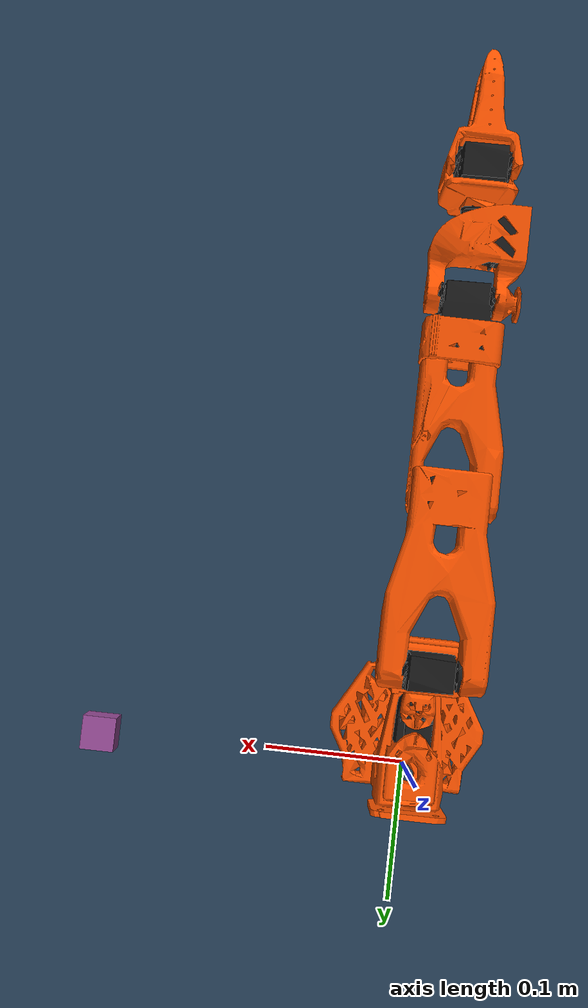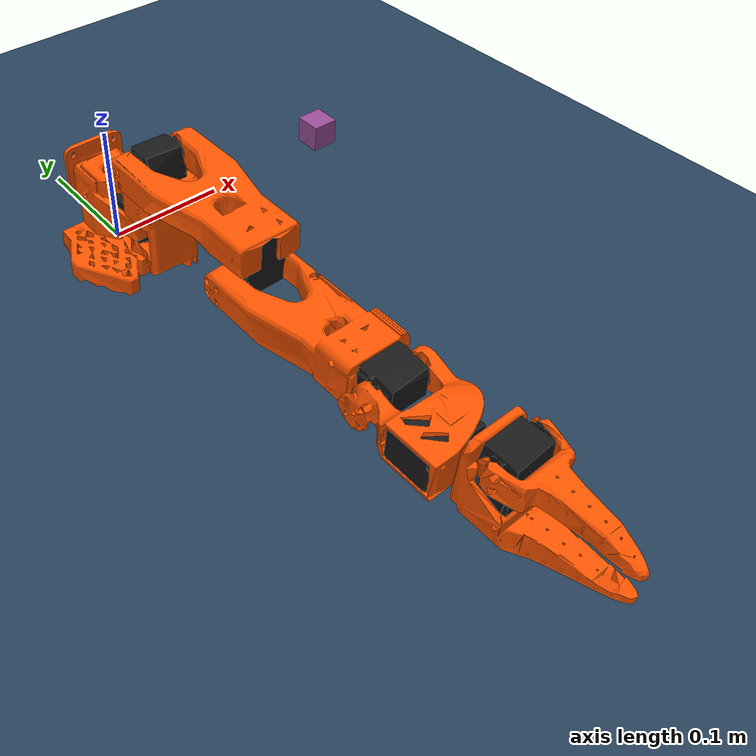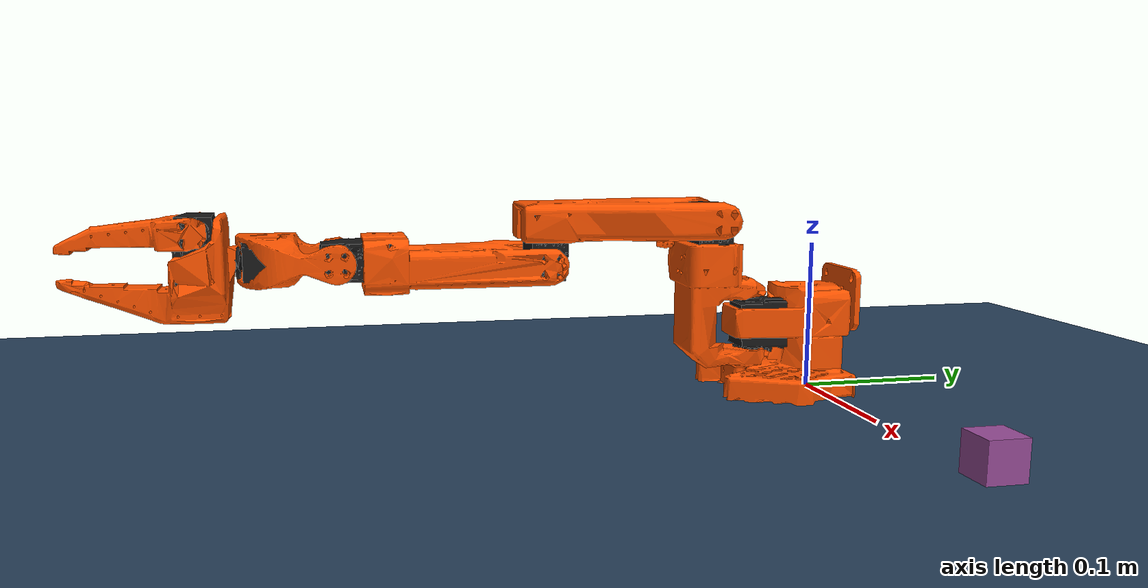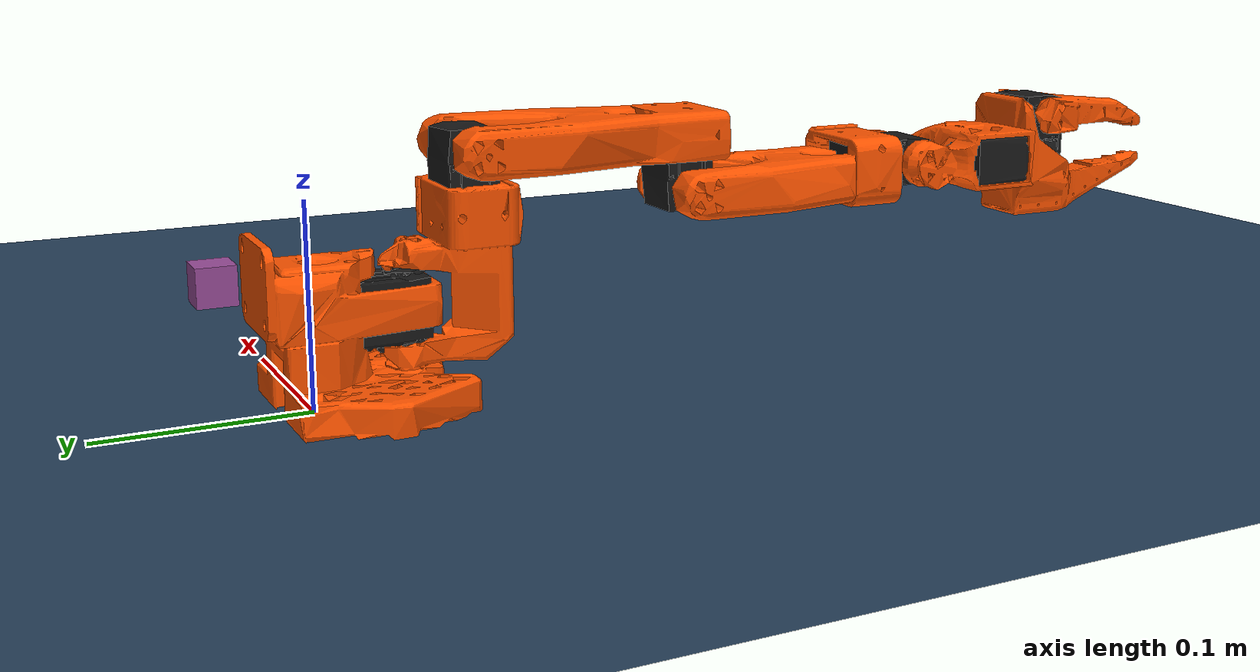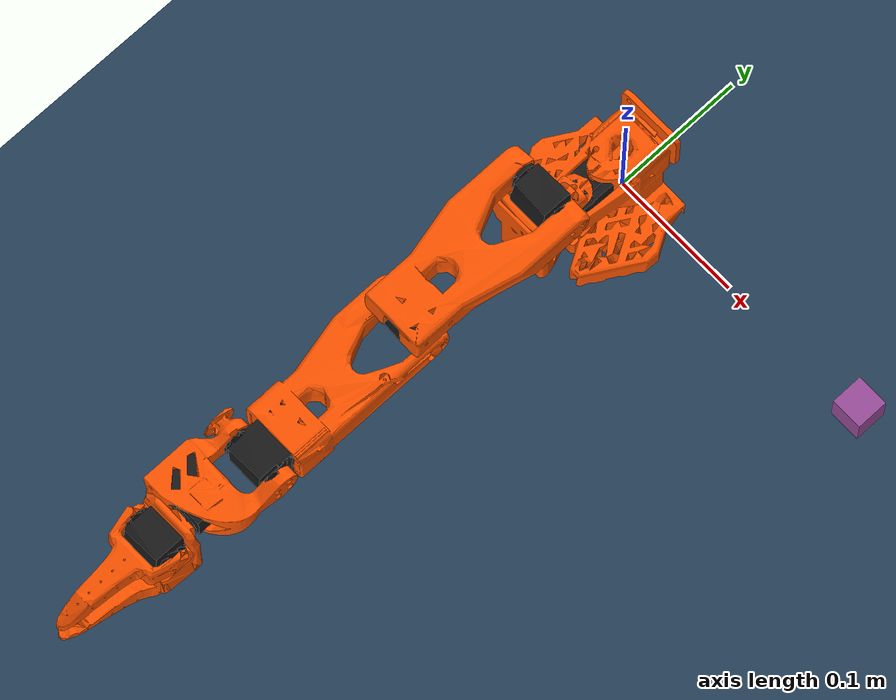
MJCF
<mujoco model="SO101PickCube">
  <include file="so_101.xml"/>

  <option timestep=".002" noslip_iterations="5" noslip_tolerance="0"/>

  <statistic center="0.2 0 0.2" extent=".6"/>

  <visual>
    <headlight diffuse=".4 .4 .4" ambient=".5 .5 .5"/>
    <global azimuth="160" elevation="-20" offheight="128" offwidth="128"/>
    <quality offsamples="8"/>
  </visual>

  <asset>
    <texture type="skybox" builtin="gradient" rgb1=".3 .5 .7" rgb2="0 0 0" width="32" height="512"/>
    <texture name="grid" type="2d" builtin="checker" width="512" height="512" rgb1=".1 .2 .3" rgb2=".2 .3 .4"/>
    <material name="grid" texture="grid" texrepeat="2 2" texuniform="true" reflectance="0"/>
  </asset>

  <worldbody>
    <camera name="front" pos="0.0 -0.6 0.15" euler="1.57 0 0" fovy="90"/>

    <body name="camera_marker" pos="0.0 -0.6 0.15" euler="1.57 0 0">
    </body>
    <light pos="0 0 3" dir="0 0 -1" diffuse="1 1 1" specular=".3 .3 .3"/>
    <geom name="floor" size="3 3 0.01" type="plane" material="grid"/>
    <body name="block" pos="0.22 0 0.015">
      <freejoint name="block"/>
      <geom name="block" type="box" size=".012 .012 .012" mass="0.01" rgba=".6 .3 .6 1"/>
    </body>
  </worldbody>

  <sensor>
    <framepos name="block_pos" objtype="geom" objname="block"/>
    <framequat name="block_quat" objtype="geom" objname="block"/>
  </sensor>
</mujoco>

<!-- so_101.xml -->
<mujoco model="so_arm101">
  <compiler angle="radian" meshdir="assets/" autolimits="true"/>

  <option cone="elliptic" impratio="10"/>

  <asset>
    <material name="orange" rgba="1.0 0.331 0.0 1.0" specular="0.1" shininess="0.1"/>
    <material name="black" rgba="0.1 0.1 0.1 1.0" specular="0.1" shininess="0.1"/>

    <mesh name="Base" file="Base.stl"/>
    <mesh name="Base_Motor" file="Base_Motor.stl"/>
    <mesh name="Rotation_Pitch" file="Rotation_Pitch.stl"/>
    <mesh name="Rotation_Pitch_Motor" file="Rotation_Pitch_Motor.stl"/>
    <mesh name="Upper_Arm" file="Upper_Arm.stl"/>
    <mesh name="Upper_Arm_Motor" file="Upper_Arm_Motor.stl"/>
    <mesh name="Lower_Arm" file="Lower_Arm.stl"/>
    <mesh name="Lower_Arm_Motor" file="Lower_Arm_Motor.stl"/>
    <mesh name="Wrist_Pitch_Roll" file="Wrist_Pitch_Roll.stl"/>
    <mesh name="Wrist_Pitch_Roll_Motor" file="Wrist_Pitch_Roll_Motor.stl"/>
    <mesh name="Fixed_Jaw" file="Fixed_Jaw.stl"/>
    <mesh name="Fixed_Jaw_Motor" file="Fixed_Jaw_Motor.stl"/>
    <mesh name="Fixed_Jaw_Collision_1" file="Fixed_Jaw_Collision_1.stl"/>
    <mesh name="Fixed_Jaw_Collision_2" file="Fixed_Jaw_Collision_2.stl"/>
    <mesh name="Moving_Jaw" file="Moving_Jaw.stl"/>
    <mesh name="Moving_Jaw_Collision_1" file="Moving_Jaw_Collision_1.stl"/>
    <mesh name="Moving_Jaw_Collision_2" file="Moving_Jaw_Collision_2.stl"/>
    <mesh name="Moving_Jaw_Collision_3" file="Moving_Jaw_Collision_3.stl"/>
  </asset>

  <default>
    <default class="so_arm101">
      <joint frictionloss="0.1" armature="0.1" damping="1"/>
      <position kp="50" forcerange="-35 35" ctrlrange="-3.14158 3.14158"/>
      <default class="Rotation">
        <joint axis="0 1 0" range="-2.2 2.2"/>
      </default>
      <default class="Pitch">
        <joint axis="1 0 0" range="-3.14158 0.2"/>
      </default>
      <default class="Elbow">
        <joint axis="1 0 0" range="0 3.14158"/>
      </default>
      <default class="Wrist_Pitch">
        <joint axis="1 0 0" range="-2.0 1.8"/>
      </default>
      <default class="Wrist_Roll">
        <joint axis="0 1 0" range="-3.14158 3.14158"/>
      </default>
      <default class="Jaw">
        <joint axis="0 0 1" range="-0.2 2.0"/>
      </default>
      <default class="visual">
        <geom type="mesh" contype="0" conaffinity="0" density="0" group="2" material="orange"/>
        <default class="motor_visual">
          <geom material="black"/>
        </default>
      </default>
      <default class="collision">
        <geom group="3" type="mesh"/>
        <default class="finger_collision">
          <geom type="box" solimp="2 1 0.01" solref="0.01 1" friction="2 0.01 0.0001"/>
        </default>
      </default>
    </default>
  </default>

  <worldbody>
    <body name="Base" childclass="so_arm101" gravcomp="1">
      <geom type="mesh" mesh="Base" class="visual"/>
      <geom type="mesh" mesh="Base_Motor" class="motor_visual"/>
      <geom type="mesh" mesh="Base" class="collision"/>
      <body name="Rotation_Pitch" pos="0 -0.0452 0.0165" quat="0.707105 0.707108 0 0" gravcomp="1">
        <inertial pos="-9.07886e-05 0.0590972 0.031089" quat="0.363978 0.441169 -0.623108 0.533504" mass="0.119226"
          diaginertia="5.94278e-05 5.89975e-05 3.13712e-05"/>
        <joint name="Rotation" class="Rotation"/>
        <geom type="mesh" mesh="Rotation_Pitch" class="visual"/>
        <geom type="mesh" mesh="Rotation_Pitch_Motor" class="motor_visual"/>
        <geom type="mesh" mesh="Rotation_Pitch" class="collision"/>
        <body name="Upper_Arm" pos="0 0.1025 0.0306" euler="1.57079 0 0" gravcomp="1">
          <inertial pos="-1.72052e-05 0.0701802 0.00310545" quat="0.50104 0.498994 -0.493562 0.50632" mass="0.162409"
            diaginertia="0.000213312 0.000167164 7.01522e-05"/>
          <joint name="Pitch" class="Pitch"/>
          <geom type="mesh" mesh="Upper_Arm" class="visual"/>
          <geom type="mesh" mesh="Upper_Arm_Motor" class="motor_visual"/>
          <geom type="mesh" mesh="Upper_Arm" class="collision"/>
          <body name="Lower_Arm" pos="0 0.11257 0.028" euler="-1.57079 0 0" gravcomp="1">
            <inertial pos="-0.00339604 0.00137796 0.0768007" quat="0.701995 0.0787996 0.0645626 0.704859"
              mass="0.147968" diaginertia="0.000138803 0.000107748 4.84242e-05"/>
            <joint name="Elbow" class="Elbow"/>
            <geom type="mesh" mesh="Lower_Arm" class="visual"/>
            <geom type="mesh" mesh="Lower_Arm_Motor" class="motor_visual"/>
            <geom type="mesh" mesh="Lower_Arm" class="collision"/>
            <body name="Wrist_Pitch_Roll" pos="0 0.0052 0.1349" euler="-1.57079 0 0" gravcomp="1">
              <inertial pos="-0.00852653 -0.0352279 -2.34622e-05" quat="-0.0522806 0.705235 0.0549524 0.704905"
                mass="0.0661321" diaginertia="3.45403e-05 2.39041e-05 1.94704e-05"/>
              <joint name="Wrist_Pitch" class="Wrist_Pitch"/>
              <geom type="mesh" mesh="Wrist_Pitch_Roll" class="visual"/>
              <geom type="mesh" mesh="Wrist_Pitch_Roll_Motor" class="motor_visual"/>
              <geom type="mesh" mesh="Wrist_Pitch_Roll" class="collision"/>
              <body name="Fixed_Jaw" pos="0 -0.0601 0" euler="0 1.57079 0" gravcomp="1">
                <inertial pos="0.00552377 -0.0280167 0.000483583" quat="0.41836 0.620891 -0.350644 0.562599"
                  mass="0.0929859" diaginertia="5.03136e-05 4.64098e-05 2.72961e-05"/>
                <joint name="Wrist_Roll" class="Wrist_Roll"/>
                <geom type="mesh" mesh="Fixed_Jaw" class="visual"/>
                <geom type="mesh" mesh="Fixed_Jaw_Motor" class="motor_visual"/>
                <geom type="mesh" mesh="Fixed_Jaw_Collision_1" class="collision"/>
                <geom type="mesh" mesh="Fixed_Jaw_Collision_2" class="collision"/>
                <geom class="finger_collision" name="fixed_jaw_pad_1" size="0.001 0.005 0.004" pos="0.0089 -0.1014 0"/>
                <geom class="finger_collision" name="fixed_jaw_pad_2" size="0.001 0.005 0.006" pos="0.0109 -0.0914 0"/>
                <geom class="finger_collision" name="fixed_jaw_pad_3" size="0.001 0.01 0.007" pos="0.0126 -0.0768 0"/>
                <geom class="finger_collision" name="fixed_jaw_pad_4" size="0.001 0.01 0.008" pos="0.0143 -0.0572 0"/>
                <!-- TCP (Tool Center Point) site at gripper center -->
                <site name="tcp" pos="0 -0.07 0" size="0.00001" rgba="1 1 0 1" type="sphere"/>
                <camera name="wrist" pos="0 -0.1 -0.1" quat="0 1 -1 0" fovy="75"/>
                <body name="Moving_Jaw" pos="-0.0202 -0.0244 0" quat="1.34924e-11 -3.67321e-06 1 -3.67321e-06" gravcomp="1">
                  <inertial pos="-0.00161745 -0.0303473 0.000449646" quat="0.696562 0.716737 -0.0239844 -0.0227026"
                    mass="0.0202444" diaginertia="1.11265e-05 8.99651e-06 2.99548e-06"/>
                  <joint name="Jaw" class="Jaw"/>
                  <geom type="mesh" mesh="Moving_Jaw" class="visual"/>
                  <geom type="mesh" mesh="Moving_Jaw_Collision_1" class="collision"/>
                  <geom type="mesh" mesh="Moving_Jaw_Collision_2" class="collision"/>
                  <geom type="mesh" mesh="Moving_Jaw_Collision_3" class="collision"/>
                  <geom class="finger_collision" name="moving_jaw_pad_1" size="0.001 0.005 0.004" pos="-0.0113 -0.077 0"/>
                  <geom class="finger_collision" name="moving_jaw_pad_2" size="0.001 0.005 0.006" pos="-0.0093 -0.067 0"/>
                  <geom class="finger_collision" name="moving_jaw_pad_3" size="0.001 0.01 0.006" pos="-0.0073 -0.055 0"/>
                  <geom class="finger_collision" name="moving_jaw_pad_4" size="0.001 0.01 0.008" pos="-0.0073 -0.035 0"/>
                </body>
              </body>
            </body>
          </body>
        </body>
      </body>
    </body>
  </worldbody>

  <actuator>
    <position class="Rotation" name="Rotation" joint="Rotation"/>
    <position class="Pitch" name="Pitch" joint="Pitch"/>
    <position class="Elbow" name="Elbow" joint="Elbow"/>
    <position class="Wrist_Pitch" name="Wrist_Pitch" joint="Wrist_Pitch"/>
    <position class="Wrist_Roll" name="Wrist_Roll" joint="Wrist_Roll"/>
    <position class="Jaw" name="Jaw" joint="Jaw"/>
  </actuator>

  <contact>
    <exclude body1="Base" body2="Rotation_Pitch"/>
  </contact>

</mujoco>
